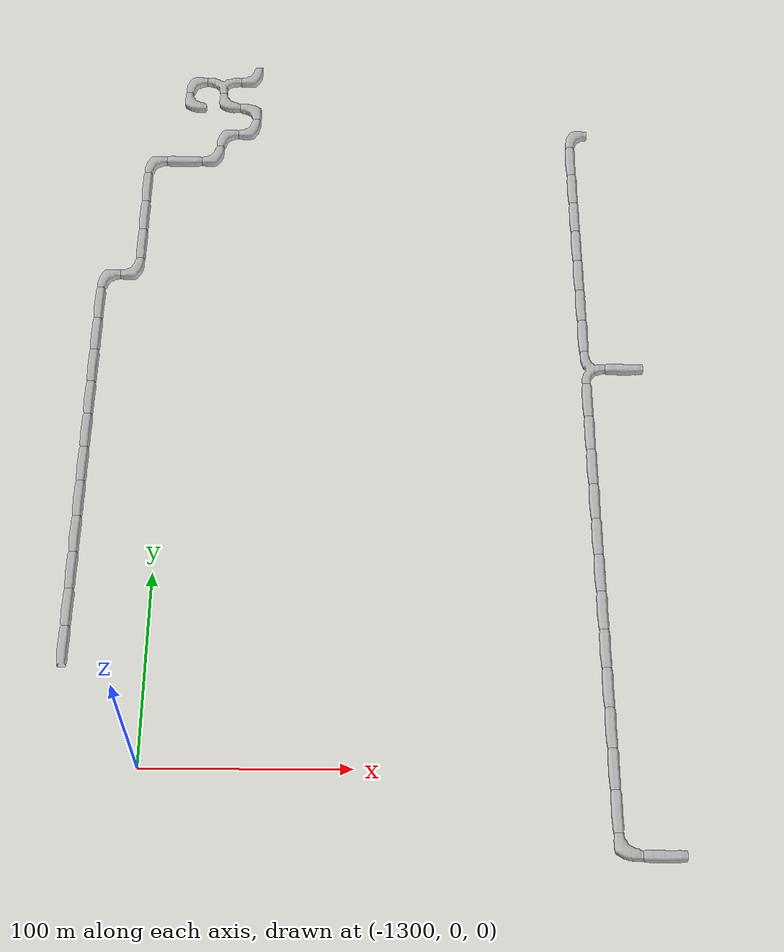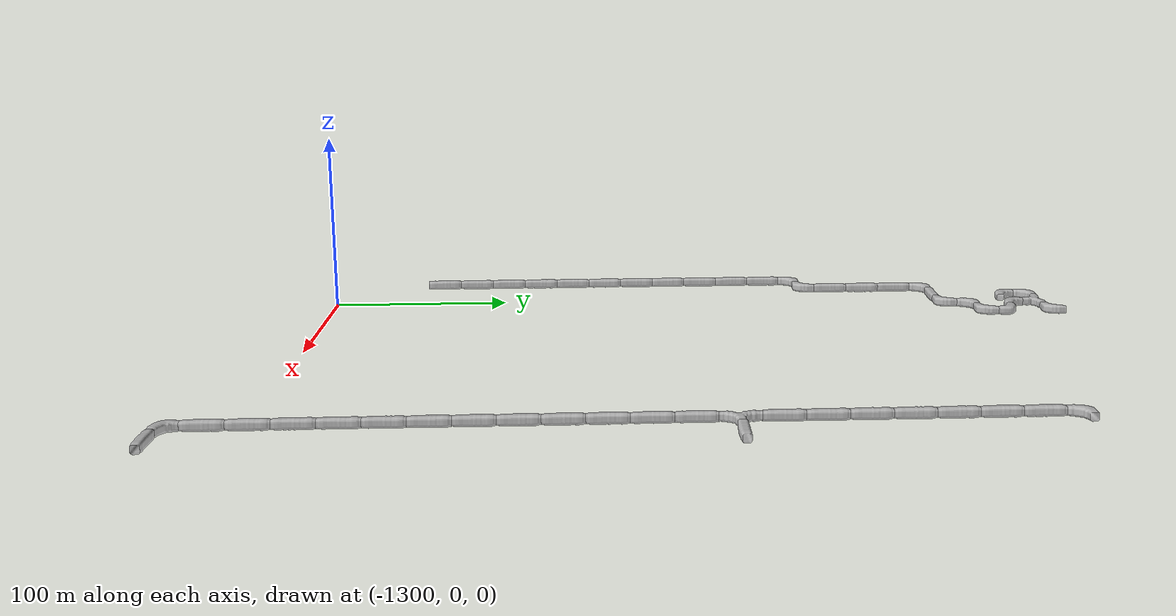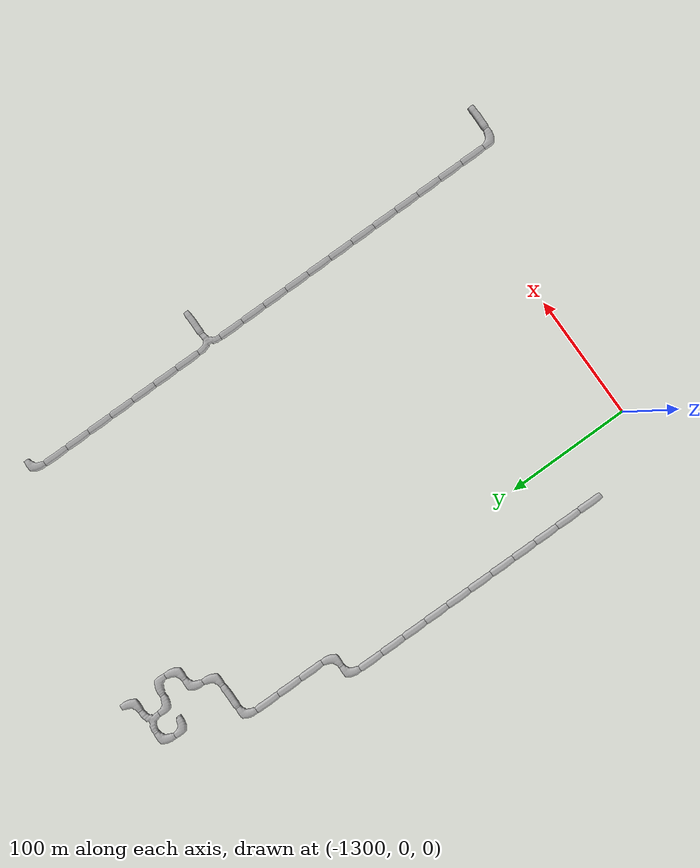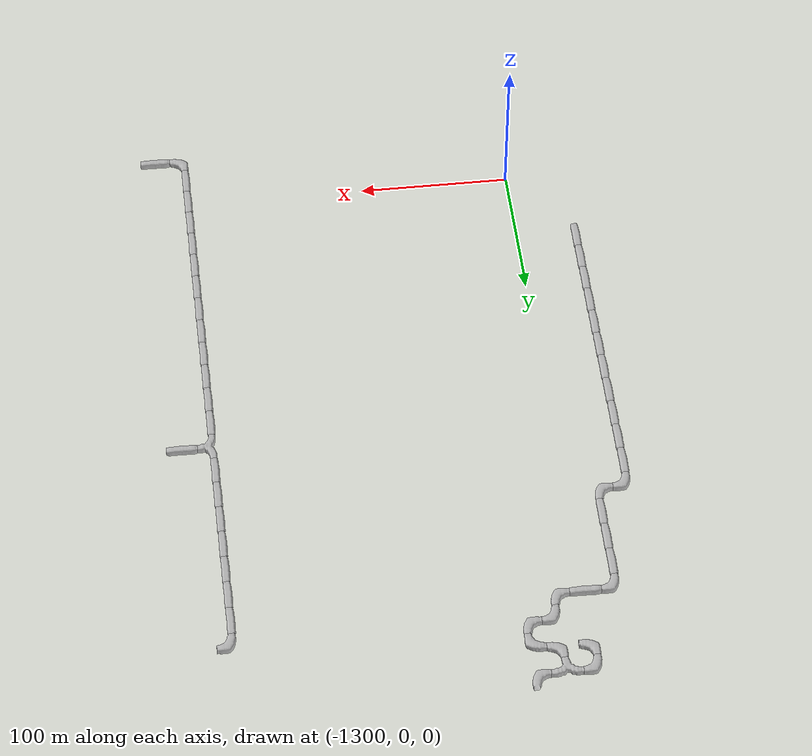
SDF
<sdf version="1.6">
 <world name="cave_16000_2">
  <include>
   <static>true</static>
   <name>cave_-53_-2</name>
   <pose>-1060 -40 0 0 0 1.5707963267948966</pose>
   <uri>model://cave_straight_20m</uri>
  </include>
  <include>
   <static>true</static>
   <name>cave_-54_-2</name>
   <pose>-1080 -40 0 0 0 0.0</pose>
   <uri>model://cave_L_20m</uri>
  </include>
  <include>
   <static>true</static>
   <name>cave_-54_-1</name>
   <pose>-1080 -20 0 0 0 0.0</pose>
   <uri>model://cave_straight_20m</uri>
  </include>
  <include>
   <static>true</static>
   <name>cave_-54_0</name>
   <pose>-1080 0 0 0 0 0.0</pose>
   <uri>model://cave_straight_20m</uri>
  </include>
  <include>
   <static>true</static>
   <name>cave_-54_1</name>
   <pose>-1080 20 0 0 0 0.0</pose>
   <uri>model://cave_straight_20m</uri>
  </include>
  <include>
   <static>true</static>
   <name>cave_-54_2</name>
   <pose>-1080 40 0 0 0 0.0</pose>
   <uri>model://cave_straight_20m</uri>
  </include>
  <include>
   <static>true</static>
   <name>cave_-54_3</name>
   <pose>-1080 60 0 0 0 0.0</pose>
   <uri>model://cave_straight_20m</uri>
  </include>
  <include>
   <static>true</static>
   <name>cave_-54_4</name>
   <pose>-1080 80 0 0 0 0.0</pose>
   <uri>model://cave_straight_20m</uri>
  </include>
  <include>
   <static>true</static>
   <name>cave_-54_5</name>
   <pose>-1080 100 0 0 0 0.0</pose>
   <uri>model://cave_straight_20m</uri>
  </include>
  <include>
   <static>true</static>
   <name>cave_-54_6</name>
   <pose>-1080 120 0 0 0 0.0</pose>
   <uri>model://cave_straight_20m</uri>
  </include>
  <include>
   <static>true</static>
   <name>cave_-54_7</name>
   <pose>-1080 140 0 0 0 0.0</pose>
   <uri>model://cave_straight_20m</uri>
  </include>
  <include>
   <static>true</static>
   <name>cave_-54_8</name>
   <pose>-1080 160 0 0 0 0.0</pose>
   <uri>model://cave_straight_20m</uri>
  </include>
  <include>
   <static>true</static>
   <name>cave_-54_9</name>
   <pose>-1080 180 0 0 0 0.0</pose>
   <uri>model://cave_straight_20m</uri>
  </include>
  <include>
   <static>true</static>
   <name>cave_-54_10</name>
   <pose>-1080 200 0 0 0 0.0</pose>
   <uri>model://cave_straight_20m</uri>
  </include>
  <include>
   <static>true</static>
   <name>cave_-54_11</name>
   <pose>-1080 220 0 0 0 -1.5707963267948966</pose>
   <uri>model://cave_3way_20m</uri>
  </include>
  <include>
   <static>true</static>
   <name>cave_-53_11</name>
   <pose>-1060 220 0 0 0 1.5707963267948966</pose>
   <uri>model://cave_straight_20m</uri>
  </include>
  <include>
   <static>true</static>
   <name>cave_-54_12</name>
   <pose>-1080 240 0 0 0 0.0</pose>
   <uri>model://cave_straight_20m</uri>
  </include>
  <include>
   <static>true</static>
   <name>cave_-54_13</name>
   <pose>-1080 260 0 0 0 0.0</pose>
   <uri>model://cave_straight_20m</uri>
  </include>
  <include>
   <static>true</static>
   <name>cave_-54_14</name>
   <pose>-1080 280 0 0 0 0.0</pose>
   <uri>model://cave_straight_20m</uri>
  </include>
  <include>
   <static>true</static>
   <name>cave_-54_15</name>
   <pose>-1080 300 0 0 0 0.0</pose>
   <uri>model://cave_straight_20m</uri>
  </include>
  <include>
   <static>true</static>
   <name>cave_-54_16</name>
   <pose>-1080 320 0 0 0 0.0</pose>
   <uri>model://cave_straight_20m</uri>
  </include>
  <include>
   <static>true</static>
   <name>cave_-54_17</name>
   <pose>-1080 340 0 0 0 0.0</pose>
   <uri>model://cave_straight_20m</uri>
  </include>
  <include>
   <static>true</static>
   <name>cave_-54_18</name>
   <pose>-1080 360 0 0 0 0.0</pose>
   <uri>model://cave_straight_20m</uri>
  </include>
  <include>
   <static>true</static>
   <name>cave_-54_19</name>
   <pose>-1080 380 0 0 0 -1.5707963267948966</pose>
   <uri>model://cave_L_20m</uri>
  </include>
  <include>
   <static>true</static>
   <name>cave_-63_21</name>
   <pose>-1260 420 0 0 0 1.5707963267948966</pose>
   <uri>model://cave_L_20m</uri>
  </include>
  <include>
   <static>true</static>
   <name>cave_-64_21</name>
   <pose>-1280 420 0 0 0 3.141592653589793</pose>
   <uri>model://cave_3way_20m</uri>
  </include>
  <include>
   <static>true</static>
   <name>cave_-64_20</name>
   <pose>-1280 400 0 0 0 0.0</pose>
   <uri>model://cave_L_20m</uri>
  </include>
  <include>
   <static>true</static>
   <name>cave_-63_20</name>
   <pose>-1260 400 0 0 0 3.141592653589793</pose>
   <uri>model://cave_L_20m</uri>
  </include>
  <include>
   <static>true</static>
   <name>cave_-63_19</name>
   <pose>-1260 380 0 0 0 1.5707963267948966</pose>
   <uri>model://cave_L_20m</uri>
  </include>
  <include>
   <static>true</static>
   <name>cave_-64_19</name>
   <pose>-1280 380 0 0 0 -1.5707963267948966</pose>
   <uri>model://cave_L_20m</uri>
  </include>
  <include>
   <static>true</static>
   <name>cave_-64_18</name>
   <pose>-1280 360 0 0 0 1.5707963267948966</pose>
   <uri>model://cave_L_20m</uri>
  </include>
  <include>
   <static>true</static>
   <name>cave_-65_18</name>
   <pose>-1300 360 0 0 0 1.5707963267948966</pose>
   <uri>model://cave_straight_20m</uri>
  </include>
  <include>
   <static>true</static>
   <name>cave_-66_18</name>
   <pose>-1320 360 0 0 0 -1.5707963267948966</pose>
   <uri>model://cave_L_20m</uri>
  </include>
  <include>
   <static>true</static>
   <name>cave_-66_17</name>
   <pose>-1320 340 0 0 0 0.0</pose>
   <uri>model://cave_straight_20m</uri>
  </include>
  <include>
   <static>true</static>
   <name>cave_-66_16</name>
   <pose>-1320 320 0 0 0 0.0</pose>
   <uri>model://cave_straight_20m</uri>
  </include>
  <include>
   <static>true</static>
   <name>cave_-66_15</name>
   <pose>-1320 300 0 0 0 0.0</pose>
   <uri>model://cave_straight_20m</uri>
  </include>
  <include>
   <static>true</static>
   <name>cave_-66_14</name>
   <pose>-1320 280 0 0 0 1.5707963267948966</pose>
   <uri>model://cave_L_20m</uri>
  </include>
  <include>
   <static>true</static>
   <name>cave_-67_14</name>
   <pose>-1340 280 0 0 0 -1.5707963267948966</pose>
   <uri>model://cave_L_20m</uri>
  </include>
  <include>
   <static>true</static>
   <name>cave_-67_13</name>
   <pose>-1340 260 0 0 0 0.0</pose>
   <uri>model://cave_straight_20m</uri>
  </include>
  <include>
   <static>true</static>
   <name>cave_-67_12</name>
   <pose>-1340 240 0 0 0 0.0</pose>
   <uri>model://cave_straight_20m</uri>
  </include>
  <include>
   <static>true</static>
   <name>cave_-67_11</name>
   <pose>-1340 220 0 0 0 0.0</pose>
   <uri>model://cave_straight_20m</uri>
  </include>
  <include>
   <static>true</static>
   <name>cave_-67_10</name>
   <pose>-1340 200 0 0 0 0.0</pose>
   <uri>model://cave_straight_20m</uri>
  </include>
  <include>
   <static>true</static>
   <name>cave_-67_9</name>
   <pose>-1340 180 0 0 0 0.0</pose>
   <uri>model://cave_straight_20m</uri>
  </include>
  <include>
   <static>true</static>
   <name>cave_-67_8</name>
   <pose>-1340 160 0 0 0 0.0</pose>
   <uri>model://cave_straight_20m</uri>
  </include>
  <include>
   <static>true</static>
   <name>cave_-67_7</name>
   <pose>-1340 140 0 0 0 0.0</pose>
   <uri>model://cave_straight_20m</uri>
  </include>
  <include>
   <static>true</static>
   <name>cave_-67_6</name>
   <pose>-1340 120 0 0 0 0.0</pose>
   <uri>model://cave_straight_20m</uri>
  </include>
  <include>
   <static>true</static>
   <name>cave_-67_5</name>
   <pose>-1340 100 0 0 0 0.0</pose>
   <uri>model://cave_straight_20m</uri>
  </include>
  <include>
   <static>true</static>
   <name>cave_-67_4</name>
   <pose>-1340 80 0 0 0 0.0</pose>
   <uri>model://cave_straight_20m</uri>
  </include>
  <include>
   <static>true</static>
   <name>cave_-67_3</name>
   <pose>-1340 60 0 0 0 0.0</pose>
   <uri>model://cave_straight_20m</uri>
  </include>
  <include>
   <static>true</static>
   <name>cave_-65_21</name>
   <pose>-1300 420 0 0 0 -1.5707963267948966</pose>
   <uri>model://cave_L_20m</uri>
  </include>
  <include>
   <static>true</static>
   <name>cave_-65_20</name>
   <pose>-1300 400 0 0 0 0.0</pose>
   <uri>model://cave_L_20m</uri>
  </include>
 </world>
</sdf>
